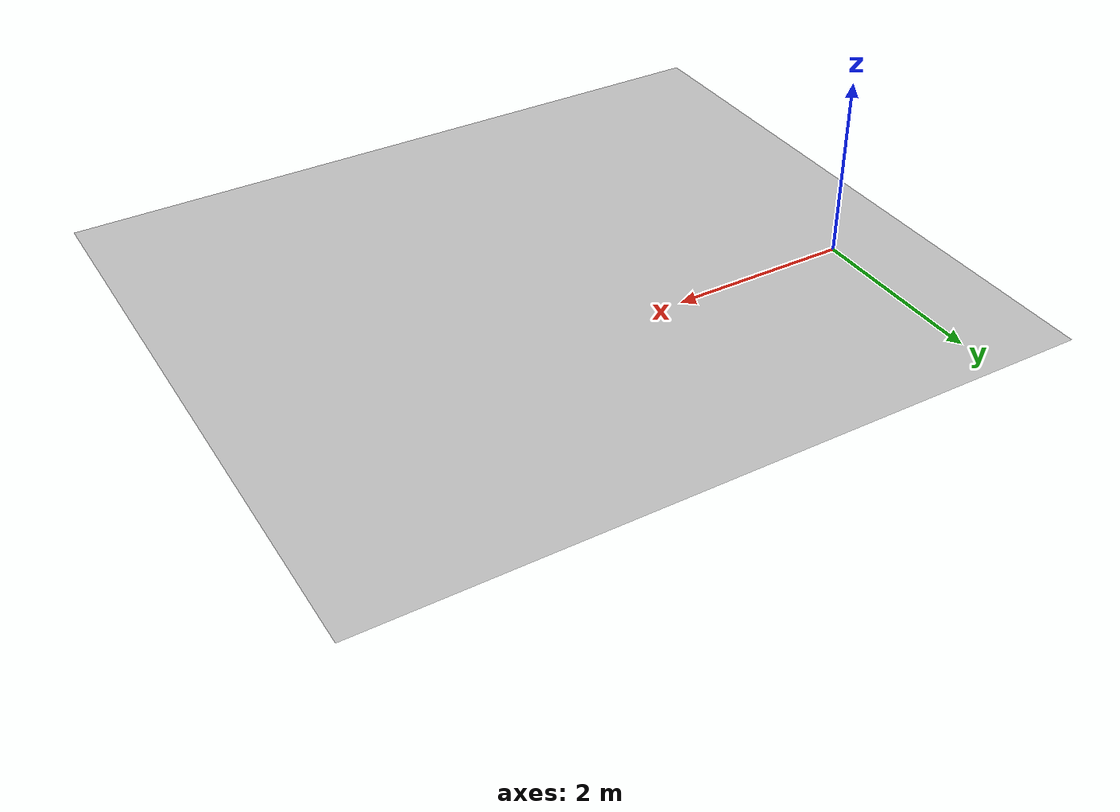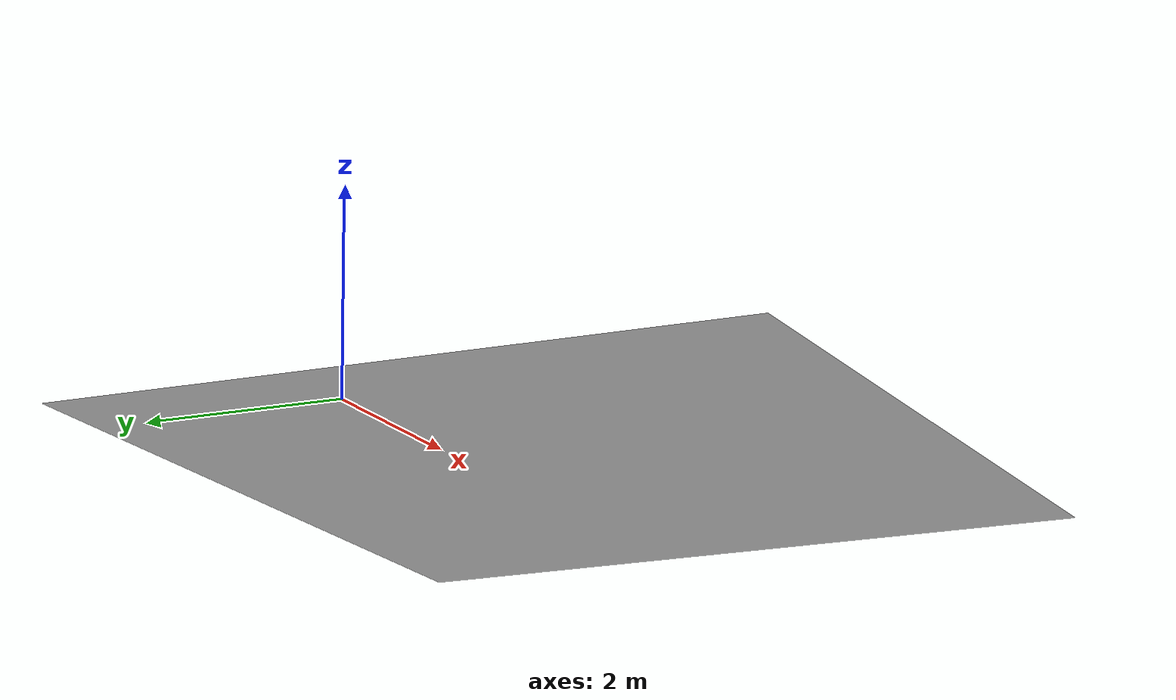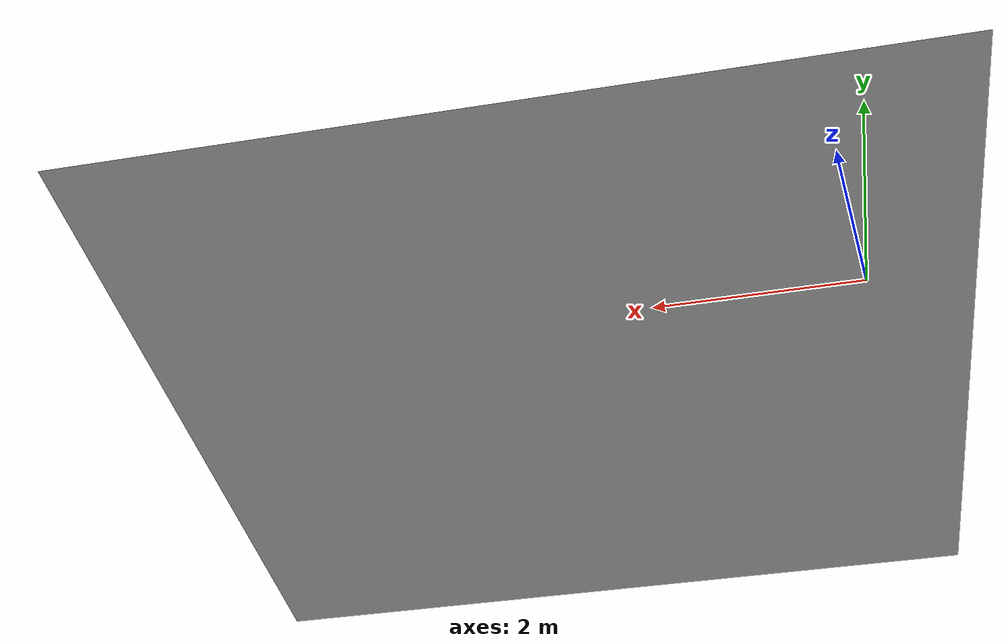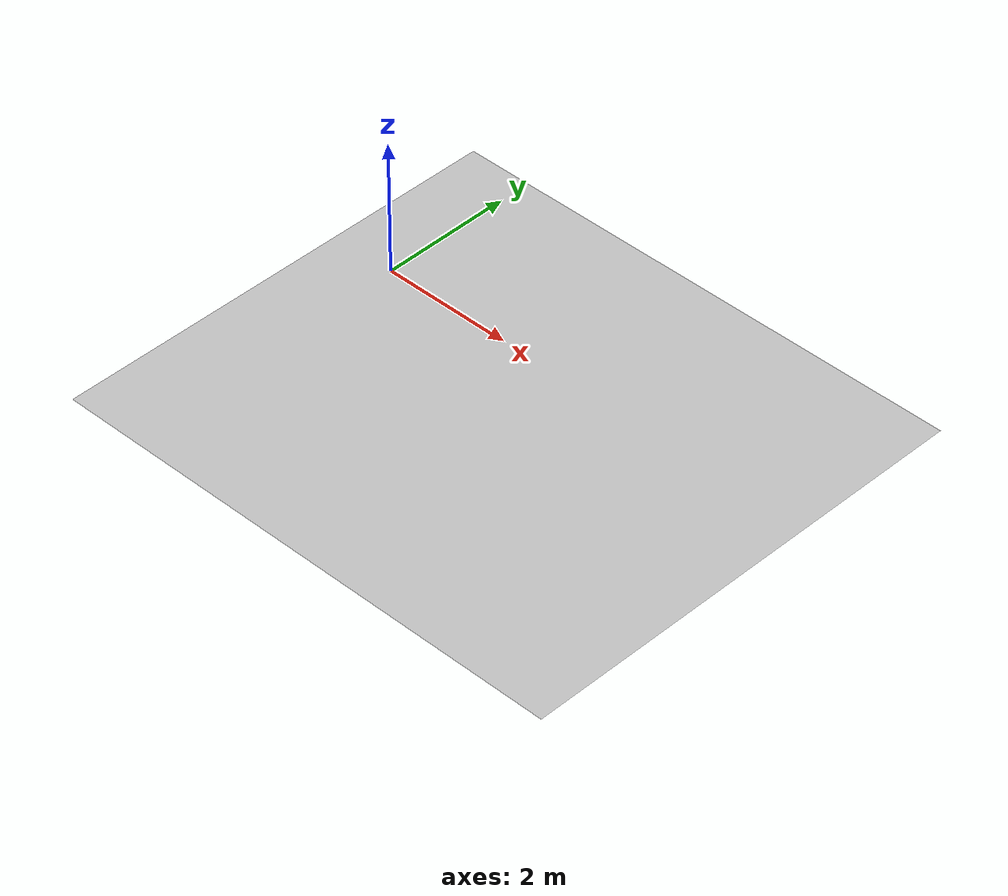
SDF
<sdf version='1.5'>
  <!-- Draw Model -->
  <model name="carpet">
    <static>true</static>
    <link name="carpet">
      <visual name="visual">
        <geometry>
          <mesh>
            <uri>model://carpet/meshes/DAE/carpet.dae</uri>
          </mesh>
        </geometry>
      </visual>
    </link>
  </model>
</sdf>
